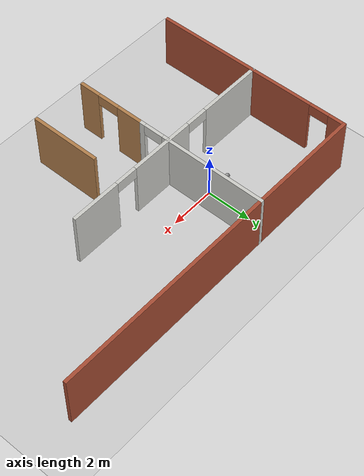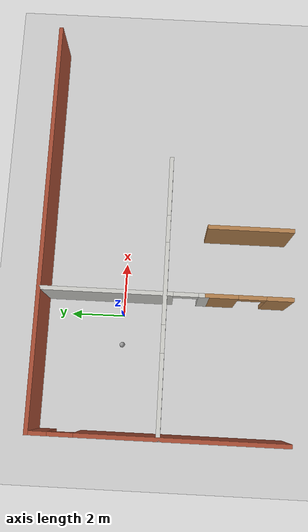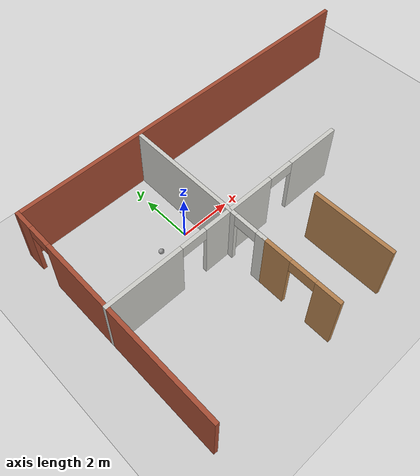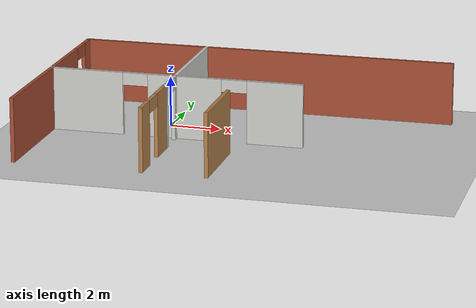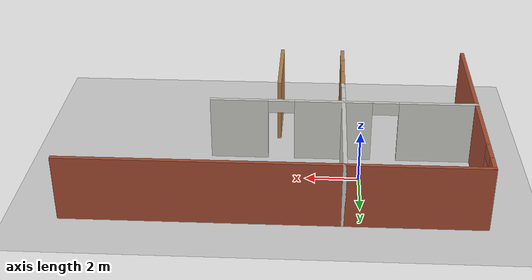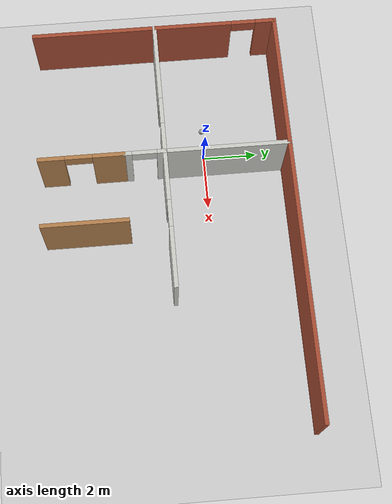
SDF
<sdf version="1.6">
 <world name="default">
  <model name="ground_plane">
   <static>1</static>
   <link name="link">
    <collision name="collision">
     <geometry><plane><normal>0 0 1</normal><size>100 100</size></plane></geometry>
     <surface><friction><ode><mu>100</mu><mu2>50</mu2></ode></friction></surface>
    </collision>
    <visual name="visual">
     <cast_shadows>0</cast_shadows>
     <geometry><plane><normal>0 0 1</normal><size>100 100</size></plane></geometry>
     <material>
      <script><uri>file://media/materials/scripts/gazebo.material</uri><name>Gazebo/Grey</name></script>
     </material>
    </visual>
   </link>
  </model>
  <model name="building">
   <link name="Wall_0">
    <pose>0 4.5 0 0 -0 0</pose>
    <visual name="Wall_0_Visual">
     <pose>0 0 1.25 0 -0 0</pose>
     <geometry><box><size>15.15 0.15 2.5</size></box></geometry>
     <material>
      <script><uri>file://media/materials/scripts/gazebo.material</uri><name>Gazebo/Bricks</name></script>
      <ambient>0.996078 0.47451 0.0196078 1</ambient>
      <shader type="pixel"/>
      <diffuse>1 1 1 1</diffuse>
      <specular>0.2 0.2 0.2 1</specular>
      <emissive>0 0 0 1</emissive>
     </material>
     <meta><layer>0</layer></meta>
    </visual>
    <collision name="Wall_0_Collision">
     <pose>0 0 1.25 0 -0 0</pose>
     <geometry><box><size>15.15 0.15 2.5</size></box></geometry>
     <surface>
      <friction>
       <ode><mu>1</mu><mu2>1</mu2><fdir1>0 0 0</fdir1><slip1>0</slip1><slip2>0</slip2></ode>
       <torsional>
        <coefficient>1</coefficient>
        <patch_radius>0</patch_radius>
        <surface_radius>0</surface_radius>
        <use_patch_radius>1</use_patch_radius>
        <ode><slip>0</slip></ode>
       </torsional>
      </friction>
      <bounce><restitution_coefficient>0</restitution_coefficient><threshold>1e+06</threshold></bounce>
      <contact>
       <collide_without_contact>0</collide_without_contact>
       <collide_without_contact_bitmask>1</collide_without_contact_bitmask>
       <collide_bitmask>1</collide_bitmask>
       <ode>
        <soft_cfm>0</soft_cfm>
        <soft_erp>0.2</soft_erp>
        <kp>1e+13</kp>
        <kd>1</kd>
        <max_vel>0.01</max_vel>
        <min_depth>0</min_depth>
       </ode>
       <bullet>
        <split_impulse>1</split_impulse>
        <split_impulse_penetration_threshold>-0.01</split_impulse_penetration_threshold>
        <soft_cfm>0</soft_cfm>
        <soft_erp>0.2</soft_erp>
        <kp>1e+13</kp>
        <kd>1</kd>
       </bullet>
      </contact>
     </surface>
    </collision>
   </link>
   <link name="Wall_15">
    <pose>0 -3 0 0 0 -1.5708</pose>
    <visual name="Wall_15_Visual">
     <pose>0 0 1.25 0 -0 0</pose>
     <geometry><box><size>3.15 0.15 2.5</size></box></geometry>
     <material>
      <script><uri>file://media/materials/scripts/gazebo.material</uri><name>Gazebo/Wood</name></script>
      <ambient>0.435294 0.796078 0.67451 1</ambient>
      <shader type="pixel"/>
      <diffuse>1 1 1 1</diffuse>
      <specular>0.2 0.2 0.2 1</specular>
      <emissive>0 0 0 1</emissive>
     </material>
     <meta><layer>0</layer></meta>
    </visual>
    <collision name="Wall_15_Collision">
     <pose>0 0 1.25 0 -0 0</pose>
     <geometry><box><size>3.15 0.15 2.5</size></box></geometry>
     <surface>
      <friction>
       <ode><mu>1</mu><mu2>1</mu2><fdir1>0 0 0</fdir1><slip1>0</slip1><slip2>0</slip2></ode>
       <torsional>
        <coefficient>1</coefficient>
        <patch_radius>0</patch_radius>
        <surface_radius>0</surface_radius>
        <use_patch_radius>1</use_patch_radius>
        <ode><slip>0</slip></ode>
       </torsional>
      </friction>
      <bounce><restitution_coefficient>0</restitution_coefficient><threshold>1e+06</threshold></bounce>
      <contact>
       <collide_without_contact>0</collide_without_contact>
       <collide_without_contact_bitmask>1</collide_without_contact_bitmask>
       <collide_bitmask>1</collide_bitmask>
       <ode>
        <soft_cfm>0</soft_cfm>
        <soft_erp>0.2</soft_erp>
        <kp>1e+13</kp>
        <kd>1</kd>
        <max_vel>0.01</max_vel>
        <min_depth>0</min_depth>
       </ode>
       <bullet>
        <split_impulse>1</split_impulse>
        <split_impulse_penetration_threshold>-0.01</split_impulse_penetration_threshold>
        <soft_cfm>0</soft_cfm>
        <soft_erp>0.2</soft_erp>
        <kp>1e+13</kp>
        <kd>1</kd>
       </bullet>
      </contact>
     </surface>
    </collision>
   </link>
   <link name="Wall_17">
    <pose>-2.5 -3 0 0 0 -1.5708</pose>
    <visual name="Wall_17_Visual_0">
     <pose>-0.986122 0 1.25 0 -0 0</pose>
     <geometry><box><size>1.17776 0.15 2.5</size></box></geometry>
     <material>
      <script><uri>file://media/materials/scripts/gazebo.material</uri><name>Gazebo/Wood</name></script>
      <ambient>0.435294 0.796078 0.67451 1</ambient>
      <shader type="pixel"/>
      <diffuse>1 1 1 1</diffuse>
      <specular>0.2 0.2 0.2 1</specular>
      <emissive>0 0 0 1</emissive>
     </material>
     <meta><layer>0</layer></meta>
    </visual>
    <visual name="Wall_17_Visual_2">
     <pose>0.102756 0 2.25 0 -0 0</pose>
     <geometry><box><size>1 0.15 0.5</size></box></geometry>
     <material>
      <script><uri>file://media/materials/scripts/gazebo.material</uri><name>Gazebo/Wood</name></script>
      <ambient>0.435294 0.796078 0.67451 1</ambient>
      <shader type="pixel"/>
      <diffuse>1 1 1 1</diffuse>
      <specular>0.2 0.2 0.2 1</specular>
      <emissive>0 0 0 1</emissive>
     </material>
     <meta><layer>0</layer></meta>
    </visual>
    <visual name="Wall_17_Visual_1">
     <pose>1.08888 0 1.25 0 -0 0</pose>
     <geometry><box><size>0.972244 0.15 2.5</size></box></geometry>
     <material>
      <script><uri>file://media/materials/scripts/gazebo.material</uri><name>Gazebo/Wood</name></script>
      <ambient>0.435294 0.796078 0.67451 1</ambient>
      <shader type="pixel"/>
      <diffuse>1 1 1 1</diffuse>
      <specular>0.2 0.2 0.2 1</specular>
      <emissive>0 0 0 1</emissive>
     </material>
     <meta><layer>0</layer></meta>
    </visual>
    <collision name="Wall_17_Collision_2">
     <pose>0.102756 0 2.25 0 -0 0</pose>
     <geometry><box><size>1 0.15 0.5</size></box></geometry>
     <surface>
      <friction>
       <ode><mu>1</mu><mu2>1</mu2><fdir1>0 0 0</fdir1><slip1>0</slip1><slip2>0</slip2></ode>
       <torsional>
        <coefficient>1</coefficient>
        <patch_radius>0</patch_radius>
        <surface_radius>0</surface_radius>
        <use_patch_radius>1</use_patch_radius>
        <ode><slip>0</slip></ode>
       </torsional>
      </friction>
      <bounce><restitution_coefficient>0</restitution_coefficient><threshold>1e+06</threshold></bounce>
      <contact>
       <collide_without_contact>0</collide_without_contact>
       <collide_without_contact_bitmask>1</collide_without_contact_bitmask>
       <collide_bitmask>1</collide_bitmask>
       <ode>
        <soft_cfm>0</soft_cfm>
        <soft_erp>0.2</soft_erp>
        <kp>1e+13</kp>
        <kd>1</kd>
        <max_vel>0.01</max_vel>
        <min_depth>0</min_depth>
       </ode>
       <bullet>
        <split_impulse>1</split_impulse>
        <split_impulse_penetration_threshold>-0.01</split_impulse_penetration_threshold>
        <soft_cfm>0</soft_cfm>
        <soft_erp>0.2</soft_erp>
        <kp>1e+13</kp>
        <kd>1</kd>
       </bullet>
      </contact>
     </surface>
    </collision>
    <collision name="Wall_17_Collision_0">
     <pose>-0.986122 0 1.25 0 -0 0</pose>
     <geometry><box><size>1.17776 0.15 2.5</size></box></geometry>
     <surface>
      <friction>
       <ode><mu>1</mu><mu2>1</mu2><fdir1>0 0 0</fdir1><slip1>0</slip1><slip2>0</slip2></ode>
       <torsional>
        <coefficient>1</coefficient>
        <patch_radius>0</patch_radius>
        <surface_radius>0</surface_radius>
        <use_patch_radius>1</use_patch_radius>
        <ode><slip>0</slip></ode>
       </torsional>
      </friction>
      <bounce><restitution_coefficient>0</restitution_coefficient><threshold>1e+06</threshold></bounce>
      <contact>
       <collide_without_contact>0</collide_without_contact>
       <collide_without_contact_bitmask>1</collide_without_contact_bitmask>
       <collide_bitmask>1</collide_bitmask>
       <ode>
        <soft_cfm>0</soft_cfm>
        <soft_erp>0.2</soft_erp>
        <kp>1e+13</kp>
        <kd>1</kd>
        <max_vel>0.01</max_vel>
        <min_depth>0</min_depth>
       </ode>
       <bullet>
        <split_impulse>1</split_impulse>
        <split_impulse_penetration_threshold>-0.01</split_impulse_penetration_threshold>
        <soft_cfm>0</soft_cfm>
        <soft_erp>0.2</soft_erp>
        <kp>1e+13</kp>
        <kd>1</kd>
       </bullet>
      </contact>
     </surface>
    </collision>
    <collision name="Wall_17_Collision_1">
     <pose>1.08888 0 1.25 0 -0 0</pose>
     <geometry><box><size>0.972244 0.15 2.5</size></box></geometry>
     <surface>
      <friction>
       <ode><mu>1</mu><mu2>1</mu2><fdir1>0 0 0</fdir1><slip1>0</slip1><slip2>0</slip2></ode>
       <torsional>
        <coefficient>1</coefficient>
        <patch_radius>0</patch_radius>
        <surface_radius>0</surface_radius>
        <use_patch_radius>1</use_patch_radius>
        <ode><slip>0</slip></ode>
       </torsional>
      </friction>
      <bounce><restitution_coefficient>0</restitution_coefficient><threshold>1e+06</threshold></bounce>
      <contact>
       <collide_without_contact>0</collide_without_contact>
       <collide_without_contact_bitmask>1</collide_without_contact_bitmask>
       <collide_bitmask>1</collide_bitmask>
       <ode>
        <soft_cfm>0</soft_cfm>
        <soft_erp>0.2</soft_erp>
        <kp>1e+13</kp>
        <kd>1</kd>
        <max_vel>0.01</max_vel>
        <min_depth>0</min_depth>
       </ode>
       <bullet>
        <split_impulse>1</split_impulse>
        <split_impulse_penetration_threshold>-0.01</split_impulse_penetration_threshold>
        <soft_cfm>0</soft_cfm>
        <soft_erp>0.2</soft_erp>
        <kp>1e+13</kp>
        <kd>1</kd>
       </bullet>
      </contact>
     </surface>
    </collision>
   </link>
   <link name="Wall_19">
    <pose>-2.5 0 0 0 -0 0</pose>
    <visual name="Wall_19_Visual_1">
     <pose>0.383063 0 1.25 0 -0 0</pose>
     <geometry><box><size>2.95551 0.15 2.5</size></box></geometry>
     <material>
      <script><uri>file://media/materials/scripts/gazebo.material</uri><name>Gazebo/CeilingTiled</name></script>
      <ambient>1 0.764706 0.305882 1</ambient>
      <shader type="pixel"/>
      <diffuse>1 1 1 1</diffuse>
      <specular>0 0 0 1</specular>
      <emissive>0 0 0 1</emissive>
     </material>
     <meta><layer>0</layer></meta>
    </visual>
    <visual name="Wall_19_Visual_2">
     <pose>3.96791 0 1.25 0 -0 0</pose>
     <geometry><box><size>2.21418 0.15 2.5</size></box></geometry>
     <material>
      <script><uri>file://media/materials/scripts/gazebo.material</uri><name>Gazebo/CeilingTiled</name></script>
      <ambient>1 0.764706 0.305882 1</ambient>
      <shader type="pixel"/>
      <diffuse>1 1 1 1</diffuse>
      <specular>0 0 0 1</specular>
      <emissive>0 0 0 1</emissive>
     </material>
     <meta><layer>0</layer></meta>
    </visual>
    <visual name="Wall_19_Visual_0">
     <pose>-3.58485 0 1.25 0 -0 0</pose>
     <geometry><box><size>2.98031 0.15 2.5</size></box></geometry>
     <material>
      <script><uri>file://media/materials/scripts/gazebo.material</uri><name>Gazebo/CeilingTiled</name></script>
      <ambient>1 0.764706 0.305882 1</ambient>
      <shader type="pixel"/>
      <diffuse>1 1 1 1</diffuse>
      <specular>0 0 0 1</specular>
      <emissive>0 0 0 1</emissive>
     </material>
     <meta><layer>0</layer></meta>
    </visual>
    <visual name="Wall_19_Visual_4">
     <pose>2.36082 0 2.25 0 -0 0</pose>
     <geometry><box><size>1 0.15 0.5</size></box></geometry>
     <material>
      <script><uri>file://media/materials/scripts/gazebo.material</uri><name>Gazebo/CeilingTiled</name></script>
      <ambient>1 0.764706 0.305882 1</ambient>
      <shader type="pixel"/>
      <diffuse>1 1 1 1</diffuse>
      <specular>0 0 0 1</specular>
      <emissive>0 0 0 1</emissive>
     </material>
     <meta><layer>0</layer></meta>
    </visual>
    <visual name="Wall_19_Visual_3">
     <pose>-1.59469 0 2.25 0 -0 0</pose>
     <geometry><box><size>1 0.15 0.5</size></box></geometry>
     <material>
      <script><uri>file://media/materials/scripts/gazebo.material</uri><name>Gazebo/CeilingTiled</name></script>
      <ambient>1 0.764706 0.305882 1</ambient>
      <shader type="pixel"/>
      <diffuse>1 1 1 1</diffuse>
      <specular>0 0 0 1</specular>
      <emissive>0 0 0 1</emissive>
     </material>
     <meta><layer>0</layer></meta>
    </visual>
    <collision name="Wall_19_Collision_0">
     <pose>-3.58485 0 1.25 0 -0 0</pose>
     <geometry><box><size>2.98031 0.15 2.5</size></box></geometry>
     <surface>
      <friction>
       <ode><mu>1</mu><mu2>1</mu2><fdir1>0 0 0</fdir1><slip1>0</slip1><slip2>0</slip2></ode>
       <torsional>
        <coefficient>1</coefficient>
        <patch_radius>0</patch_radius>
        <surface_radius>0</surface_radius>
        <use_patch_radius>1</use_patch_radius>
        <ode><slip>0</slip></ode>
       </torsional>
      </friction>
      <bounce><restitution_coefficient>0</restitution_coefficient><threshold>1e+06</threshold></bounce>
      <contact>
       <collide_without_contact>0</collide_without_contact>
       <collide_without_contact_bitmask>1</collide_without_contact_bitmask>
       <collide_bitmask>1</collide_bitmask>
       <ode>
        <soft_cfm>0</soft_cfm>
        <soft_erp>0.2</soft_erp>
        <kp>1e+13</kp>
        <kd>1</kd>
        <max_vel>0.01</max_vel>
        <min_depth>0</min_depth>
       </ode>
       <bullet>
        <split_impulse>1</split_impulse>
        <split_impulse_penetration_threshold>-0.01</split_impulse_penetration_threshold>
        <soft_cfm>0</soft_cfm>
        <soft_erp>0.2</soft_erp>
        <kp>1e+13</kp>
        <kd>1</kd>
       </bullet>
      </contact>
     </surface>
    </collision>
    <collision name="Wall_19_Collision_2">
     <pose>3.96791 0 1.25 0 -0 0</pose>
     <geometry><box><size>2.21418 0.15 2.5</size></box></geometry>
     <surface>
      <friction>
       <ode><mu>1</mu><mu2>1</mu2><fdir1>0 0 0</fdir1><slip1>0</slip1><slip2>0</slip2></ode>
       <torsional>
        <coefficient>1</coefficient>
        <patch_radius>0</patch_radius>
        <surface_radius>0</surface_radius>
        <use_patch_radius>1</use_patch_radius>
        <ode><slip>0</slip></ode>
       </torsional>
      </friction>
      <bounce><restitution_coefficient>0</restitution_coefficient><threshold>1e+06</threshold></bounce>
      <contact>
       <collide_without_contact>0</collide_without_contact>
       <collide_without_contact_bitmask>1</collide_without_contact_bitmask>
       <collide_bitmask>1</collide_bitmask>
       <ode>
        <soft_cfm>0</soft_cfm>
        <soft_erp>0.2</soft_erp>
        <kp>1e+13</kp>
        <kd>1</kd>
        <max_vel>0.01</max_vel>
        <min_depth>0</min_depth>
       </ode>
       <bullet>
        <split_impulse>1</split_impulse>
        <split_impulse_penetration_threshold>-0.01</split_impulse_penetration_threshold>
        <soft_cfm>0</soft_cfm>
        <soft_erp>0.2</soft_erp>
        <kp>1e+13</kp>
        <kd>1</kd>
       </bullet>
      </contact>
     </surface>
    </collision>
    <collision name="Wall_19_Collision_1">
     <pose>0.383063 0 1.25 0 -0 0</pose>
     <geometry><box><size>2.95551 0.15 2.5</size></box></geometry>
     <surface>
      <friction>
       <ode><mu>1</mu><mu2>1</mu2><fdir1>0 0 0</fdir1><slip1>0</slip1><slip2>0</slip2></ode>
       <torsional>
        <coefficient>1</coefficient>
        <patch_radius>0</patch_radius>
        <surface_radius>0</surface_radius>
        <use_patch_radius>1</use_patch_radius>
        <ode><slip>0</slip></ode>
       </torsional>
      </friction>
      <bounce><restitution_coefficient>0</restitution_coefficient><threshold>1e+06</threshold></bounce>
      <contact>
       <collide_without_contact>0</collide_without_contact>
       <collide_without_contact_bitmask>1</collide_without_contact_bitmask>
       <collide_bitmask>1</collide_bitmask>
       <ode>
        <soft_cfm>0</soft_cfm>
        <soft_erp>0.2</soft_erp>
        <kp>1e+13</kp>
        <kd>1</kd>
        <max_vel>0.01</max_vel>
        <min_depth>0</min_depth>
       </ode>
       <bullet>
        <split_impulse>1</split_impulse>
        <split_impulse_penetration_threshold>-0.01</split_impulse_penetration_threshold>
        <soft_cfm>0</soft_cfm>
        <soft_erp>0.2</soft_erp>
        <kp>1e+13</kp>
        <kd>1</kd>
       </bullet>
      </contact>
     </surface>
    </collision>
    <collision name="Wall_19_Collision_3">
     <pose>-1.59469 0 2.25 0 -0 0</pose>
     <geometry><box><size>1 0.15 0.5</size></box></geometry>
     <surface>
      <friction>
       <ode><mu>1</mu><mu2>1</mu2><fdir1>0 0 0</fdir1><slip1>0</slip1><slip2>0</slip2></ode>
       <torsional>
        <coefficient>1</coefficient>
        <patch_radius>0</patch_radius>
        <surface_radius>0</surface_radius>
        <use_patch_radius>1</use_patch_radius>
        <ode><slip>0</slip></ode>
       </torsional>
      </friction>
      <bounce><restitution_coefficient>0</restitution_coefficient><threshold>1e+06</threshold></bounce>
      <contact>
       <collide_without_contact>0</collide_without_contact>
       <collide_without_contact_bitmask>1</collide_without_contact_bitmask>
       <collide_bitmask>1</collide_bitmask>
       <ode>
        <soft_cfm>0</soft_cfm>
        <soft_erp>0.2</soft_erp>
        <kp>1e+13</kp>
        <kd>1</kd>
        <max_vel>0.01</max_vel>
        <min_depth>0</min_depth>
       </ode>
       <bullet>
        <split_impulse>1</split_impulse>
        <split_impulse_penetration_threshold>-0.01</split_impulse_penetration_threshold>
        <soft_cfm>0</soft_cfm>
        <soft_erp>0.2</soft_erp>
        <kp>1e+13</kp>
        <kd>1</kd>
       </bullet>
      </contact>
     </surface>
    </collision>
    <collision name="Wall_19_Collision_4">
     <pose>2.36082 0 2.25 0 -0 0</pose>
     <geometry><box><size>1 0.15 0.5</size></box></geometry>
     <surface>
      <friction>
       <ode><mu>1</mu><mu2>1</mu2><fdir1>0 0 0</fdir1><slip1>0</slip1><slip2>0</slip2></ode>
       <torsional>
        <coefficient>1</coefficient>
        <patch_radius>0</patch_radius>
        <surface_radius>0</surface_radius>
        <use_patch_radius>1</use_patch_radius>
        <ode><slip>0</slip></ode>
       </torsional>
      </friction>
      <bounce><restitution_coefficient>0</restitution_coefficient><threshold>1e+06</threshold></bounce>
      <contact>
       <collide_without_contact>0</collide_without_contact>
       <collide_without_contact_bitmask>1</collide_without_contact_bitmask>
       <collide_bitmask>1</collide_bitmask>
       <ode>
        <soft_cfm>0</soft_cfm>
        <soft_erp>0.2</soft_erp>
        <kp>1e+13</kp>
        <kd>1</kd>
        <max_vel>0.01</max_vel>
        <min_depth>0</min_depth>
       </ode>
       <bullet>
        <split_impulse>1</split_impulse>
        <split_impulse_penetration_threshold>-0.01</split_impulse_penetration_threshold>
        <soft_cfm>0</soft_cfm>
        <soft_erp>0.2</soft_erp>
        <kp>1e+13</kp>
        <kd>1</kd>
       </bullet>
      </contact>
     </surface>
    </collision>
   </link>
   <link name="Wall_22">
    <pose>-2.5 2.25 0 0 -0 1.5708</pose>
    <visual name="Wall_22_Visual">
     <pose>0 0 1.25 0 -0 0</pose>
     <geometry><box><size>4.65 0.15 2.5</size></box></geometry>
     <material>
      <script><uri>file://media/materials/scripts/gazebo.material</uri><name>Gazebo/CeilingTiled</name></script>
      <ambient>1 0.764706 0.305882 1</ambient>
      <shader type="pixel"/>
      <diffuse>1 1 1 1</diffuse>
      <specular>0 0 0 1</specular>
      <emissive>0 0 0 1</emissive>
     </material>
     <meta><layer>0</layer></meta>
    </visual>
    <collision name="Wall_22_Collision">
     <pose>0 0 1.25 0 -0 0</pose>
     <geometry><box><size>4.65 0.15 2.5</size></box></geometry>
     <surface>
      <friction>
       <ode><mu>1</mu><mu2>1</mu2><fdir1>0 0 0</fdir1><slip1>0</slip1><slip2>0</slip2></ode>
       <torsional>
        <coefficient>1</coefficient>
        <patch_radius>0</patch_radius>
        <surface_radius>0</surface_radius>
        <use_patch_radius>1</use_patch_radius>
        <ode><slip>0</slip></ode>
       </torsional>
      </friction>
      <bounce><restitution_coefficient>0</restitution_coefficient><threshold>1e+06</threshold></bounce>
      <contact>
       <collide_without_contact>0</collide_without_contact>
       <collide_without_contact_bitmask>1</collide_without_contact_bitmask>
       <collide_bitmask>1</collide_bitmask>
       <ode>
        <soft_cfm>0</soft_cfm>
        <soft_erp>0.2</soft_erp>
        <kp>1e+13</kp>
        <kd>1</kd>
        <max_vel>0.01</max_vel>
        <min_depth>0</min_depth>
       </ode>
       <bullet>
        <split_impulse>1</split_impulse>
        <split_impulse_penetration_threshold>-0.01</split_impulse_penetration_threshold>
        <soft_cfm>0</soft_cfm>
        <soft_erp>0.2</soft_erp>
        <kp>1e+13</kp>
        <kd>1</kd>
       </bullet>
      </contact>
     </surface>
    </collision>
   </link>
   <link name="Wall_28">
    <pose>-2.5 -0.75 0 0 0 -1.5708</pose>
    <visual name="Wall_28_Visual_1">
     <pose>0.628859 0 1.25 0 -0 0</pose>
     <geometry><box><size>0.392282 0.15 2.5</size></box></geometry>
     <material>
      <script><uri>file://media/materials/scripts/gazebo.material</uri><name>Gazebo/CeilingTiled</name></script>
      <ambient>1 0.764706 0.305882 1</ambient>
      <shader type="pixel"/>
      <diffuse>1 1 1 1</diffuse>
      <specular>0 0 0 1</specular>
      <emissive>0 0 0 1</emissive>
     </material>
     <meta><layer>0</layer></meta>
    </visual>
    <visual name="Wall_28_Visual_2">
     <pose>-0.017282 0 2.25 0 -0 0</pose>
     <geometry><box><size>0.9 0.15 0.5</size></box></geometry>
     <material>
      <script><uri>file://media/materials/scripts/gazebo.material</uri><name>Gazebo/CeilingTiled</name></script>
      <ambient>1 0.764706 0.305882 1</ambient>
      <shader type="pixel"/>
      <diffuse>1 1 1 1</diffuse>
      <specular>0 0 0 1</specular>
      <emissive>0 0 0 1</emissive>
     </material>
     <meta><layer>0</layer></meta>
    </visual>
    <visual name="Wall_28_Visual_0">
     <pose>-0.646141 0 1.25 0 -0 0</pose>
     <geometry><box><size>0.357718 0.15 2.5</size></box></geometry>
     <material>
      <script><uri>file://media/materials/scripts/gazebo.material</uri><name>Gazebo/CeilingTiled</name></script>
      <ambient>1 0.764706 0.305882 1</ambient>
      <shader type="pixel"/>
      <diffuse>1 1 1 1</diffuse>
      <specular>0 0 0 1</specular>
      <emissive>0 0 0 1</emissive>
     </material>
     <meta><layer>0</layer></meta>
    </visual>
    <collision name="Wall_28_Collision_0">
     <pose>-0.646141 0 1.25 0 -0 0</pose>
     <geometry><box><size>0.357718 0.15 2.5</size></box></geometry>
     <surface>
      <friction>
       <ode><mu>1</mu><mu2>1</mu2><fdir1>0 0 0</fdir1><slip1>0</slip1><slip2>0</slip2></ode>
       <torsional>
        <coefficient>1</coefficient>
        <patch_radius>0</patch_radius>
        <surface_radius>0</surface_radius>
        <use_patch_radius>1</use_patch_radius>
        <ode><slip>0</slip></ode>
       </torsional>
      </friction>
      <bounce><restitution_coefficient>0</restitution_coefficient><threshold>1e+06</threshold></bounce>
      <contact>
       <collide_without_contact>0</collide_without_contact>
       <collide_without_contact_bitmask>1</collide_without_contact_bitmask>
       <collide_bitmask>1</collide_bitmask>
       <ode>
        <soft_cfm>0</soft_cfm>
        <soft_erp>0.2</soft_erp>
        <kp>1e+13</kp>
        <kd>1</kd>
        <max_vel>0.01</max_vel>
        <min_depth>0</min_depth>
       </ode>
       <bullet>
        <split_impulse>1</split_impulse>
        <split_impulse_penetration_threshold>-0.01</split_impulse_penetration_threshold>
        <soft_cfm>0</soft_cfm>
        <soft_erp>0.2</soft_erp>
        <kp>1e+13</kp>
        <kd>1</kd>
       </bullet>
      </contact>
     </surface>
    </collision>
    <collision name="Wall_28_Collision_2">
     <pose>-0.017282 0 2.25 0 -0 0</pose>
     <geometry><box><size>0.9 0.15 0.5</size></box></geometry>
     <surface>
      <friction>
       <ode><mu>1</mu><mu2>1</mu2><fdir1>0 0 0</fdir1><slip1>0</slip1><slip2>0</slip2></ode>
       <torsional>
        <coefficient>1</coefficient>
        <patch_radius>0</patch_radius>
        <surface_radius>0</surface_radius>
        <use_patch_radius>1</use_patch_radius>
        <ode><slip>0</slip></ode>
       </torsional>
      </friction>
      <bounce><restitution_coefficient>0</restitution_coefficient><threshold>1e+06</threshold></bounce>
      <contact>
       <collide_without_contact>0</collide_without_contact>
       <collide_without_contact_bitmask>1</collide_without_contact_bitmask>
       <collide_bitmask>1</collide_bitmask>
       <ode>
        <soft_cfm>0</soft_cfm>
        <soft_erp>0.2</soft_erp>
        <kp>1e+13</kp>
        <kd>1</kd>
        <max_vel>0.01</max_vel>
        <min_depth>0</min_depth>
       </ode>
       <bullet>
        <split_impulse>1</split_impulse>
        <split_impulse_penetration_threshold>-0.01</split_impulse_penetration_threshold>
        <soft_cfm>0</soft_cfm>
        <soft_erp>0.2</soft_erp>
        <kp>1e+13</kp>
        <kd>1</kd>
       </bullet>
      </contact>
     </surface>
    </collision>
    <collision name="Wall_28_Collision_1">
     <pose>0.628859 0 1.25 0 -0 0</pose>
     <geometry><box><size>0.392282 0.15 2.5</size></box></geometry>
     <surface>
      <friction>
       <ode><mu>1</mu><mu2>1</mu2><fdir1>0 0 0</fdir1><slip1>0</slip1><slip2>0</slip2></ode>
       <torsional>
        <coefficient>1</coefficient>
        <patch_radius>0</patch_radius>
        <surface_radius>0</surface_radius>
        <use_patch_radius>1</use_patch_radius>
        <ode><slip>0</slip></ode>
       </torsional>
      </friction>
      <bounce><restitution_coefficient>0</restitution_coefficient><threshold>1e+06</threshold></bounce>
      <contact>
       <collide_without_contact>0</collide_without_contact>
       <collide_without_contact_bitmask>1</collide_without_contact_bitmask>
       <collide_bitmask>1</collide_bitmask>
       <ode>
        <soft_cfm>0</soft_cfm>
        <soft_erp>0.2</soft_erp>
        <kp>1e+13</kp>
        <kd>1</kd>
        <max_vel>0.01</max_vel>
        <min_depth>0</min_depth>
       </ode>
       <bullet>
        <split_impulse>1</split_impulse>
        <split_impulse_penetration_threshold>-0.01</split_impulse_penetration_threshold>
        <soft_cfm>0</soft_cfm>
        <soft_erp>0.2</soft_erp>
        <kp>1e+13</kp>
        <kd>1</kd>
       </bullet>
      </contact>
     </surface>
    </collision>
   </link>
   <link name="Wall_6">
    <pose>-7.5 0 0 0 0 -1.5708</pose>
    <visual name="Wall_6_Visual_0">
     <pose>-4.1811 0 1.25 0 -0 0</pose>
     <geometry><box><size>0.787791 0.15 2.5</size></box></geometry>
     <material>
      <script><uri>file://media/materials/scripts/gazebo.material</uri><name>Gazebo/Bricks</name></script>
      <ambient>0.996078 0.47451 0.0196078 1</ambient>
      <shader type="pixel"/>
      <diffuse>1 1 1 1</diffuse>
      <specular>0.2 0.2 0.2 1</specular>
      <emissive>0 0 0 1</emissive>
     </material>
     <meta><layer>0</layer></meta>
    </visual>
    <visual name="Wall_6_Visual_2">
     <pose>-3.33721 0 2.25 0 -0 0</pose>
     <geometry><box><size>0.9 0.15 0.5</size></box></geometry>
     <material>
      <script><uri>file://media/materials/scripts/gazebo.material</uri><name>Gazebo/Bricks</name></script>
      <ambient>0.996078 0.47451 0.0196078 1</ambient>
      <shader type="pixel"/>
      <diffuse>1 1 1 1</diffuse>
      <specular>0.2 0.2 0.2 1</specular>
      <emissive>0 0 0 1</emissive>
     </material>
     <meta><layer>0</layer></meta>
    </visual>
    <visual name="Wall_6_Visual_1">
     <pose>0.843896 0 1.25 0 -0 0</pose>
     <geometry><box><size>7.46221 0.15 2.5</size></box></geometry>
     <material>
      <script><uri>file://media/materials/scripts/gazebo.material</uri><name>Gazebo/Bricks</name></script>
      <ambient>0.996078 0.47451 0.0196078 1</ambient>
      <shader type="pixel"/>
      <diffuse>1 1 1 1</diffuse>
      <specular>0.2 0.2 0.2 1</specular>
      <emissive>0 0 0 1</emissive>
     </material>
     <meta><layer>0</layer></meta>
    </visual>
    <collision name="Wall_6_Collision_0">
     <pose>-4.1811 0 1.25 0 -0 0</pose>
     <geometry><box><size>0.787791 0.15 2.5</size></box></geometry>
     <surface>
      <friction>
       <ode><mu>1</mu><mu2>1</mu2><fdir1>0 0 0</fdir1><slip1>0</slip1><slip2>0</slip2></ode>
       <torsional>
        <coefficient>1</coefficient>
        <patch_radius>0</patch_radius>
        <surface_radius>0</surface_radius>
        <use_patch_radius>1</use_patch_radius>
        <ode><slip>0</slip></ode>
       </torsional>
      </friction>
      <bounce><restitution_coefficient>0</restitution_coefficient><threshold>1e+06</threshold></bounce>
      <contact>
       <collide_without_contact>0</collide_without_contact>
       <collide_without_contact_bitmask>1</collide_without_contact_bitmask>
       <collide_bitmask>1</collide_bitmask>
       <ode>
        <soft_cfm>0</soft_cfm>
        <soft_erp>0.2</soft_erp>
        <kp>1e+13</kp>
        <kd>1</kd>
        <max_vel>0.01</max_vel>
        <min_depth>0</min_depth>
       </ode>
       <bullet>
        <split_impulse>1</split_impulse>
        <split_impulse_penetration_threshold>-0.01</split_impulse_penetration_threshold>
        <soft_cfm>0</soft_cfm>
        <soft_erp>0.2</soft_erp>
        <kp>1e+13</kp>
        <kd>1</kd>
       </bullet>
      </contact>
     </surface>
    </collision>
    <collision name="Wall_6_Collision_1">
     <pose>0.843896 0 1.25 0 -0 0</pose>
     <geometry><box><size>7.46221 0.15 2.5</size></box></geometry>
     <surface>
      <friction>
       <ode><mu>1</mu><mu2>1</mu2><fdir1>0 0 0</fdir1><slip1>0</slip1><slip2>0</slip2></ode>
       <torsional>
        <coefficient>1</coefficient>
        <patch_radius>0</patch_radius>
        <surface_radius>0</surface_radius>
        <use_patch_radius>1</use_patch_radius>
        <ode><slip>0</slip></ode>
       </torsional>
      </friction>
      <bounce><restitution_coefficient>0</restitution_coefficient><threshold>1e+06</threshold></bounce>
      <contact>
       <collide_without_contact>0</collide_without_contact>
       <collide_without_contact_bitmask>1</collide_without_contact_bitmask>
       <collide_bitmask>1</collide_bitmask>
       <ode>
        <soft_cfm>0</soft_cfm>
        <soft_erp>0.2</soft_erp>
        <kp>1e+13</kp>
        <kd>1</kd>
        <max_vel>0.01</max_vel>
        <min_depth>0</min_depth>
       </ode>
       <bullet>
        <split_impulse>1</split_impulse>
        <split_impulse_penetration_threshold>-0.01</split_impulse_penetration_threshold>
        <soft_cfm>0</soft_cfm>
        <soft_erp>0.2</soft_erp>
        <kp>1e+13</kp>
        <kd>1</kd>
       </bullet>
      </contact>
     </surface>
    </collision>
    <collision name="Wall_6_Collision_2">
     <pose>-3.33721 0 2.25 0 -0 0</pose>
     <geometry><box><size>0.9 0.15 0.5</size></box></geometry>
     <surface>
      <friction>
       <ode><mu>1</mu><mu2>1</mu2><fdir1>0 0 0</fdir1><slip1>0</slip1><slip2>0</slip2></ode>
       <torsional>
        <coefficient>1</coefficient>
        <patch_radius>0</patch_radius>
        <surface_radius>0</surface_radius>
        <use_patch_radius>1</use_patch_radius>
        <ode><slip>0</slip></ode>
       </torsional>
      </friction>
      <bounce><restitution_coefficient>0</restitution_coefficient><threshold>1e+06</threshold></bounce>
      <contact>
       <collide_without_contact>0</collide_without_contact>
       <collide_without_contact_bitmask>1</collide_without_contact_bitmask>
       <collide_bitmask>1</collide_bitmask>
       <ode>
        <soft_cfm>0</soft_cfm>
        <soft_erp>0.2</soft_erp>
        <kp>1e+13</kp>
        <kd>1</kd>
        <max_vel>0.01</max_vel>
        <min_depth>0</min_depth>
       </ode>
       <bullet>
        <split_impulse>1</split_impulse>
        <split_impulse_penetration_threshold>-0.01</split_impulse_penetration_threshold>
        <soft_cfm>0</soft_cfm>
        <soft_erp>0.2</soft_erp>
        <kp>1e+13</kp>
        <kd>1</kd>
       </bullet>
      </contact>
     </surface>
    </collision>
   </link>
   <static>1</static>
   <pose>3.1187 -1.5263 0 0 -0 0</pose>
  </model>
  <model name="my_ball">
   <link name="link_0">
    <inertial>
     <mass>1</mass>
     <inertia><ixx>0.1</ixx><ixy>0</ixy><ixz>0</ixz><iyy>0.1</iyy><iyz>0</iyz><izz>0.1</izz></inertia>
    </inertial>
    <visual name="visual">
     <geometry><sphere><radius>0.1</radius></sphere></geometry>
     <material>
      <lighting>1</lighting>
      <script><uri>file://media/materials/scripts/gazebo.material</uri><name>Gazebo/Grey</name></script>
      <ambient>1 1 1 1</ambient>
      <diffuse>1 1 1 1</diffuse>
      <specular>1 1 1 1</specular>
      <emissive>1 1 1 1</emissive>
      <shader type="vertex"><normal_map>__default__</normal_map></shader>
     </material>
    </visual>
    <collision name="collision">
     <geometry><sphere><radius>0.1</radius></sphere></geometry>
     <surface>
      <friction>
       <ode><mu>1</mu><mu2>1</mu2><fdir1>0 0 0</fdir1><slip1>0</slip1><slip2>0</slip2></ode>
       <torsional>
        <coefficient>1</coefficient>
        <patch_radius>0</patch_radius>
        <surface_radius>0</surface_radius>
        <use_patch_radius>1</use_patch_radius>
        <ode><slip>0</slip></ode>
       </torsional>
      </friction>
      <bounce><restitution_coefficient>0</restitution_coefficient><threshold>1e+06</threshold></bounce>
      <contact>
       <collide_without_contact>0</collide_without_contact>
       <collide_without_contact_bitmask>1</collide_without_contact_bitmask>
       <collide_bitmask>1</collide_bitmask>
       <ode>
        <soft_cfm>0</soft_cfm>
        <soft_erp>0.2</soft_erp>
        <kp>1e+13</kp>
        <kd>1</kd>
        <max_vel>0.01</max_vel>
        <min_depth>0</min_depth>
       </ode>
       <bullet>
        <split_impulse>1</split_impulse>
        <split_impulse_penetration_threshold>-0.01</split_impulse_penetration_threshold>
        <soft_cfm>0</soft_cfm>
        <soft_erp>0.2</soft_erp>
        <kp>1e+13</kp>
        <kd>1</kd>
       </bullet>
      </contact>
     </surface>
    </collision>
   </link>
   <static>0</static>
   <pose>-1.08998 0.009471 0.1 0 -0 0</pose>
  </model>
 </world>
</sdf>
